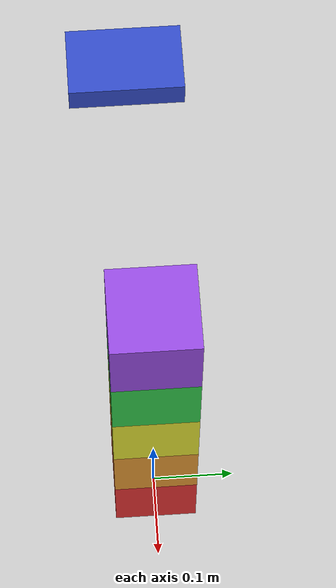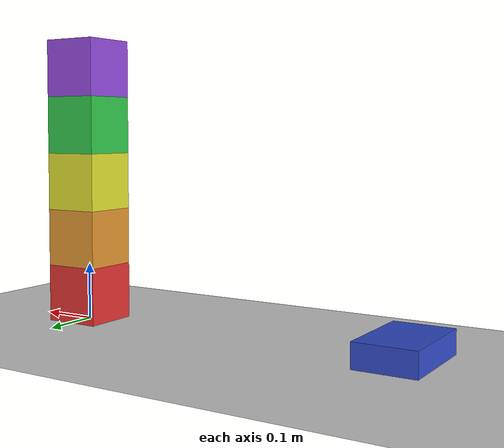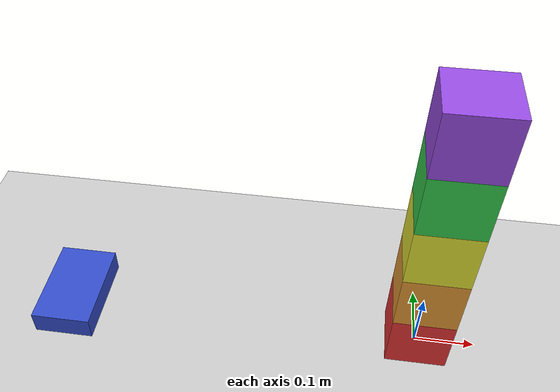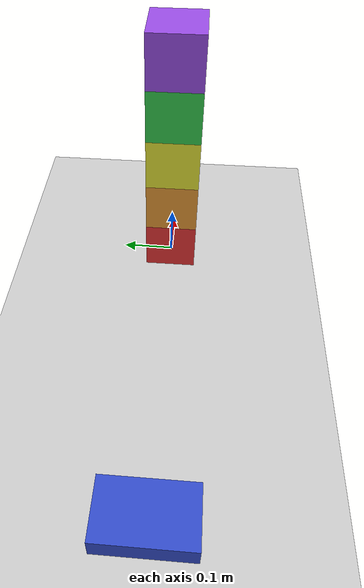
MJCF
<mujoco model="block_stack_topple">
  <option timestep="0.002" gravity="0 0 -9.81"/>
  <worldbody>
    <light name="sun" pos="0 0 3" dir="0 0 -1" diffuse="0.8 0.8 0.8"/>
    <geom name="floor" type="plane" size="3 3 0.1" friction="0.6 0.005 0.0001" rgba="0.8 0.8 0.8 1"/>

    <body name="pusher" pos="-0.6 0 0.025">
      <joint name="pusher_slide" type="slide" axis="1 0 0" damping="0"/>
      <geom name="pusher_paddle" type="box" size="0.05 0.08 0.02" mass="2" friction="0.6 0.005 0.0001" rgba="0.2 0.3 0.8 1"/>
    </body>

    <body name="block1" pos="0 0 0.05">
      <freejoint name="block1_free"/>
      <geom name="block1_geom" type="box" size="0.05 0.05 0.05" mass="0.3" friction="0.05 0.005 0.0001" priority="1" rgba="0.9 0.2 0.2 1"/>
    </body>
    <body name="block2" pos="0 0 0.15">
      <freejoint name="block2_free"/>
      <geom name="block2_geom" type="box" size="0.05 0.05 0.05" mass="0.3" friction="0.6 0.005 0.0001" rgba="0.9 0.6 0.2 1"/>
    </body>
    <body name="block3" pos="0 0 0.25">
      <freejoint name="block3_free"/>
      <geom name="block3_geom" type="box" size="0.05 0.05 0.05" mass="0.3" friction="0.6 0.005 0.0001" rgba="0.9 0.9 0.2 1"/>
    </body>
    <body name="block4" pos="0 0 0.35">
      <freejoint name="block4_free"/>
      <geom name="block4_geom" type="box" size="0.05 0.05 0.05" mass="0.3" friction="0.6 0.005 0.0001" rgba="0.2 0.8 0.3 1"/>
    </body>
    <body name="block5" pos="0 0 0.45">
      <freejoint name="block5_free"/>
      <geom name="block5_geom" type="box" size="0.05 0.05 0.05" mass="0.3" friction="0.6 0.005 0.0001" rgba="0.6 0.3 0.9 1"/>
    </body>
  </worldbody>

  <actuator>
    <velocity name="pusher_drive" joint="pusher_slide" kv="200" ctrlrange="-1 1" ctrllimited="true"/>
  </actuator>

  <keyframe>
    <key name="start" qpos="0  0 0 0.05 1 0 0 0  0 0 0.15 1 0 0 0  0 0 0.25 1 0 0 0  0 0 0.35 1 0 0 0  0 0 0.45 1 0 0 0" qvel="0.5  0 0 0 0 0 0  0 0 0 0 0 0  0 0 0 0 0 0  0 0 0 0 0 0  0 0 0 0 0 0" ctrl="0.5"/>
  </keyframe>
</mujoco>
